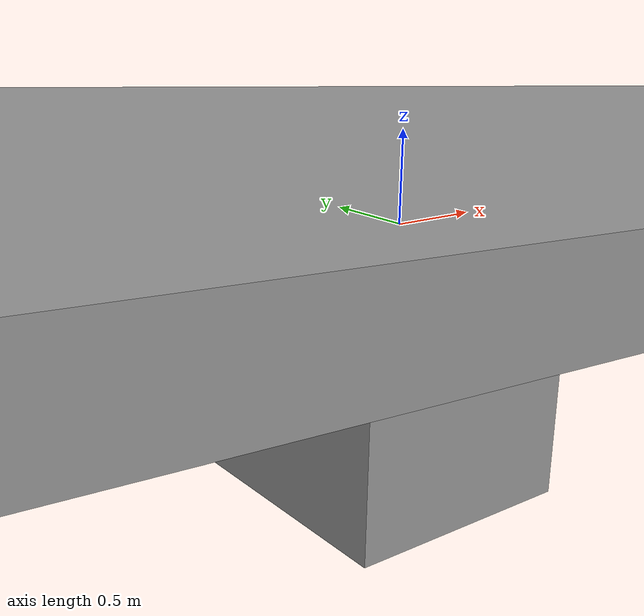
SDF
<?xml version='1.0'?>
<sdf version='1.6'>
  <model name='ramp_walker2.world'>
    <link name='link_0'>
      <pose frame=''>-0.927105 -0.03367 -0.31237 0 -0 0</pose>
      <inertial>
        <mass>27.9351</mass>
        <inertia>
          <ixx>2.04943</ixx>
          <ixy>0</ixy>
          <ixz>0</ixz>
          <iyy>0.465584</iyy>
          <iyz>0</iyz>
          <izz>2.04943</izz>
        </inertia>
        <pose frame=''>0 0 0 0 -0 0</pose>
      </inertial>
      <gravity>1</gravity>
      <self_collide>0</self_collide>
      <kinematic>0</kinematic>
      <visual name='visual'>
        <pose frame=''>0 0 0 0 -0 0</pose>
        <geometry>
          <box>
            <size>1 2.79351 1</size>
          </box>
        </geometry>
        <material>
          <lighting>1</lighting>
          <script>
            <uri>file://media/materials/scripts/gazebo.material</uri>
            <name>Gazebo/Grey</name>
          </script>
          <shader type='pixel'>
            <normal_map>__default__</normal_map>
          </shader>
          <ambient>0.3 0.3 0.3 1</ambient>
          <diffuse>0.7 0.7 0.7 1</diffuse>
          <specular>0.01 0.01 0.01 1</specular>
          <emissive>0 0 0 1</emissive>
        </material>
        <transparency>0</transparency>
        <cast_shadows>1</cast_shadows>
      </visual>
      <collision name='collision'>
        <laser_retro>0</laser_retro>
        <max_contacts>10</max_contacts>
        <pose frame=''>0 0 0 0 -0 0</pose>
        <geometry>
          <box>
            <size>1 2.79351 1</size>
          </box>
        </geometry>
        <surface>
          <friction>
            <ode>
              <mu>1</mu>
              <mu2>1</mu2>
              <fdir1>0 0 0</fdir1>
              <slip1>0</slip1>
              <slip2>0</slip2>
            </ode>
            <torsional>
              <coefficient>1</coefficient>
              <patch_radius>0</patch_radius>
              <surface_radius>0</surface_radius>
              <use_patch_radius>1</use_patch_radius>
              <ode>
                <slip>0</slip>
              </ode>
            </torsional>
          </friction>
          <bounce>
            <restitution_coefficient>0</restitution_coefficient>
            <threshold>1e+06</threshold>
          </bounce>
          <contact>
            <collide_without_contact>0</collide_without_contact>
            <collide_without_contact_bitmask>1</collide_without_contact_bitmask>
            <collide_bitmask>1</collide_bitmask>
            <ode>
              <soft_cfm>0</soft_cfm>
              <soft_erp>0.2</soft_erp>
              <kp>1e+13</kp>
              <kd>1</kd>
              <max_vel>0.01</max_vel>
              <min_depth>0</min_depth>
            </ode>
            <bullet>
              <split_impulse>1</split_impulse>
              <split_impulse_penetration_threshold>-0.01</split_impulse_penetration_threshold>
              <soft_cfm>0</soft_cfm>
              <soft_erp>0.2</soft_erp>
              <kp>1e+13</kp>
              <kd>1</kd>
            </bullet>
          </contact>
        </surface>
      </collision>
    </link>
    <link name='link_1'>
      <pose frame=''>0.927105 0.03367 0.31237 0 0.05 0</pose>
      <inertial>
        <mass>209.409</mass>
        <inertia>
          <ixx>383.824</ixx>
          <ixy>0</ixy>
          <ixz>0</ixz>
          <iyy>2217.53</iyy>
          <iyz>0</iyz>
          <izz>2597.09</izz>
        </inertia>
        <pose frame=''>0 0 0 0 -0 0</pose>
      </inertial>
      <gravity>1</gravity>
      <self_collide>0</self_collide>
      <kinematic>0</kinematic>
      <visual name='visual'>
        <pose frame=''>0 0 0 0 -0 0</pose>
        <geometry>
          <box>
            <size>11.2673 4.67683 0.34928</size>
          </box>
        </geometry>
        <material>
          <lighting>1</lighting>
          <script>
            <uri>file://media/materials/scripts/gazebo.material</uri>
            <name>Gazebo/Grey</name>
          </script>
          <shader type='pixel'>
            <normal_map>__default__</normal_map>
          </shader>
          <ambient>0.3 0.3 0.3 1</ambient>
          <diffuse>0.7 0.7 0.7 1</diffuse>
          <specular>0.01 0.01 0.01 1</specular>
          <emissive>0 0 0 1</emissive>
        </material>
        <transparency>0</transparency>
        <cast_shadows>1</cast_shadows>
      </visual>
      <collision name='collision'>
        <laser_retro>0</laser_retro>
        <max_contacts>10</max_contacts>
        <pose frame=''>0 0 0 0 -0 0</pose>
        <geometry>
          <box>
            <size>11.2673 4.67683 0.34928</size>
          </box>
        </geometry>
        <surface>
          <friction>
            <ode>
              <mu>1</mu>
              <mu2>1</mu2>
              <fdir1>0 0 0</fdir1>
              <slip1>0</slip1>
              <slip2>0</slip2>
            </ode>
            <torsional>
              <coefficient>1</coefficient>
              <patch_radius>0</patch_radius>
              <surface_radius>0</surface_radius>
              <use_patch_radius>1</use_patch_radius>
              <ode>
                <slip>0</slip>
              </ode>
            </torsional>
          </friction>
          <bounce>
            <restitution_coefficient>0</restitution_coefficient>
            <threshold>1e+06</threshold>
          </bounce>
          <contact>
            <collide_without_contact>0</collide_without_contact>
            <collide_without_contact_bitmask>1</collide_without_contact_bitmask>
            <collide_bitmask>1</collide_bitmask>
            <ode>
              <soft_cfm>0</soft_cfm>
              <soft_erp>0.2</soft_erp>
              <kp>1e+13</kp>
              <kd>1</kd>
              <max_vel>0.01</max_vel>
              <min_depth>0</min_depth>
            </ode>
            <bullet>
              <split_impulse>1</split_impulse>
              <split_impulse_penetration_threshold>-0.01</split_impulse_penetration_threshold>
              <soft_cfm>0</soft_cfm>
              <soft_erp>0.2</soft_erp>
              <kp>1e+13</kp>
              <kd>1</kd>
            </bullet>
          </contact>
        </surface>
      </collision>
    </link>
    <joint name='link_0_JOINT_0' type='fixed'>
      <parent>link_0</parent>
      <child>link_1</child>
      <pose frame=''>0 0 0 0 -0 0</pose>
      <physics>
        <ode>
          <limit>
            <cfm>0</cfm>
            <erp>0.2</erp>
          </limit>
          <suspension>
            <cfm>0</cfm>
            <erp>0.2</erp>
          </suspension>
        </ode>
      </physics>
    </joint>
    <static>0</static>
    <allow_auto_disable>1</allow_auto_disable>
  </model>
</sdf>
